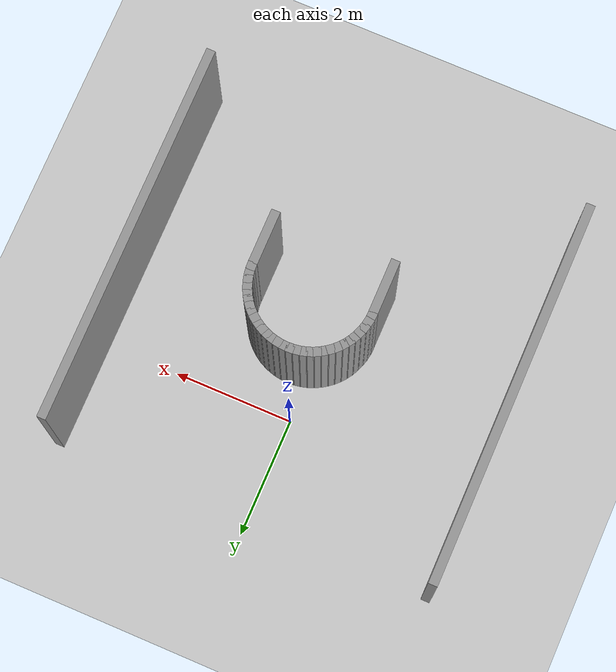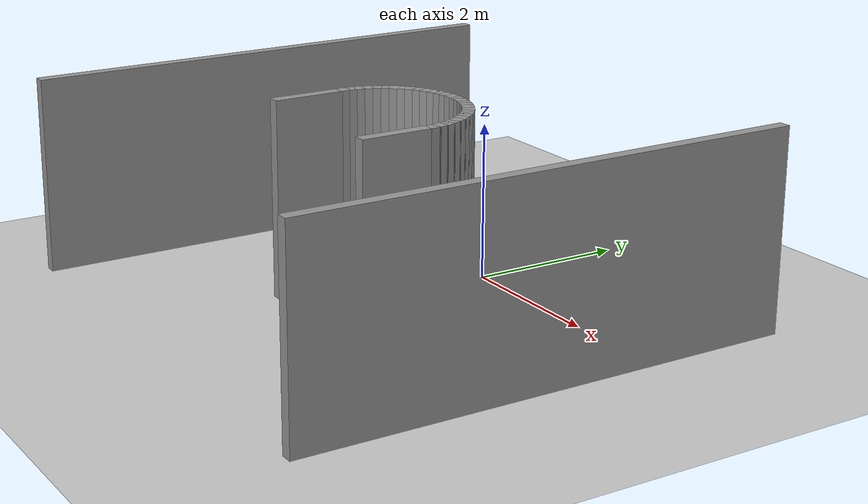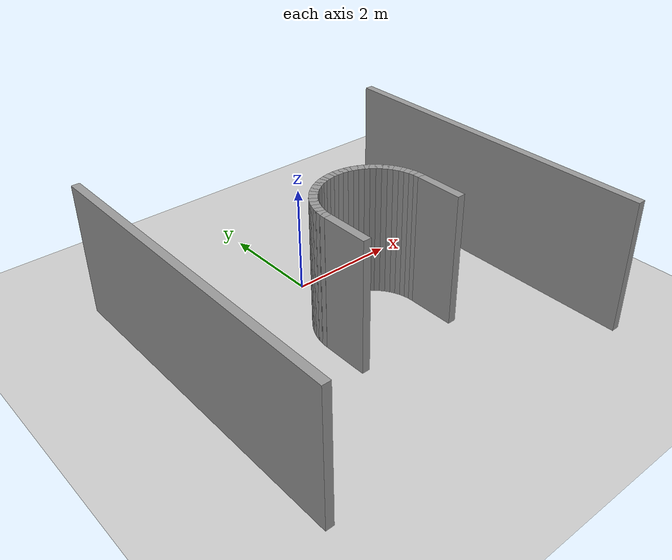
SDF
<sdf version="1.7">
 <world name="default">
  <model name="ground_plane">
   <static>1</static>
   <link name="link">
    <collision name="collision">
     <geometry><plane><normal>0 0 1</normal><size>100 100</size></plane></geometry>
     <surface>
      <contact><collide_bitmask>65535</collide_bitmask></contact>
      <friction><ode><mu>100</mu><mu2>50</mu2></ode></friction>
     </surface>
    </collision>
    <visual name="visual">
     <cast_shadows>0</cast_shadows>
     <geometry><plane><normal>0 0 1</normal><size>100 100</size></plane></geometry>
     <material>
      <script><uri>file://media/materials/scripts/gazebo.material</uri><name>Gazebo/Grey</name></script>
     </material>
    </visual>
   </link>
  </model>
  <model name="map_hourglass_u_side_walls">
   <link name="Side_wall_left">
    <collision name="Side_wall_left_Collision">
     <geometry><box><size>6.365 0.15 2.5</size></box></geometry>
     <pose>0 0 1.25 0 -0 0</pose>
    </collision>
    <visual name="Side_wall_left_Visual">
     <pose>0 0 1.25 0 -0 0</pose>
     <geometry><box><size>6.365 0.15 2.5</size></box></geometry>
     <material>
      <script><uri>file://media/materials/scripts/gazebo.material</uri><name>Gazebo/Grey</name></script>
      <ambient>1 1 1 1</ambient>
     </material>
    </visual>
    <pose>-3.120000 -1.362500 0 0 -0 1.570796</pose>
   </link>
   <link name="Side_wall_right">
    <collision name="Side_wall_right_Collision">
     <geometry><box><size>6.365 0.15 2.5</size></box></geometry>
     <pose>0 0 1.25 0 -0 0</pose>
    </collision>
    <visual name="Side_wall_right_Visual">
     <pose>0 0 1.25 0 -0 0</pose>
     <geometry><box><size>6.365 0.15 2.5</size></box></geometry>
     <material>
      <script><uri>file://media/materials/scripts/gazebo.material</uri><name>Gazebo/Grey</name></script>
      <ambient>1 1 1 1</ambient>
     </material>
    </visual>
    <pose>3.270000 -1.362500 0 0 -0 1.570796</pose>
   </link>
   <static>1</static>
  </model>
  <model name="map_hourglass_u_goal_u">
   <link name="Goal_U_top_00">
    <collision name="Goal_U_top_00_Collision">
     <geometry><box><size>0.13084 0.15 2.5</size></box></geometry>
     <pose>0 0 1.25 0 -0 0</pose>
    </collision>
    <visual name="Goal_U_top_00_Visual">
     <pose>0 0 1.25 0 -0 0</pose>
     <geometry><box><size>0.13084 0.15 2.5</size></box></geometry>
     <material>
      <script><uri>file://media/materials/scripts/gazebo.material</uri><name>Gazebo/Grey</name></script>
      <ambient>1 1 1 1</ambient>
     </material>
    </visual>
    <pose>1.298630 -1.597664 0 0 -0 1.623156</pose>
   </link>
   <link name="Goal_U_top_01">
    <collision name="Goal_U_top_01_Collision">
     <geometry><box><size>0.13084 0.15 2.5</size></box></geometry>
     <pose>0 0 1.25 0 -0 0</pose>
    </collision>
    <visual name="Goal_U_top_01_Visual">
     <pose>0 0 1.25 0 -0 0</pose>
     <geometry><box><size>0.13084 0.15 2.5</size></box></geometry>
     <material>
      <script><uri>file://media/materials/scripts/gazebo.material</uri><name>Gazebo/Grey</name></script>
      <ambient>1 1 1 1</ambient>
     </material>
    </visual>
    <pose>1.287688 -1.493566 0 0 -0 1.727876</pose>
   </link>
   <link name="Goal_U_top_02">
    <collision name="Goal_U_top_02_Collision">
     <geometry><box><size>0.13084 0.15 2.5</size></box></geometry>
     <pose>0 0 1.25 0 -0 0</pose>
    </collision>
    <visual name="Goal_U_top_02_Visual">
     <pose>0 0 1.25 0 -0 0</pose>
     <geometry><box><size>0.13084 0.15 2.5</size></box></geometry>
     <material>
      <script><uri>file://media/materials/scripts/gazebo.material</uri><name>Gazebo/Grey</name></script>
      <ambient>1 1 1 1</ambient>
     </material>
    </visual>
    <pose>1.265926 -1.391181 0 0 -0 1.832596</pose>
   </link>
   <link name="Goal_U_top_03">
    <collision name="Goal_U_top_03_Collision">
     <geometry><box><size>0.13084 0.15 2.5</size></box></geometry>
     <pose>0 0 1.25 0 -0 0</pose>
    </collision>
    <visual name="Goal_U_top_03_Visual">
     <pose>0 0 1.25 0 -0 0</pose>
     <geometry><box><size>0.13084 0.15 2.5</size></box></geometry>
     <material>
      <script><uri>file://media/materials/scripts/gazebo.material</uri><name>Gazebo/Grey</name></script>
      <ambient>1 1 1 1</ambient>
     </material>
    </visual>
    <pose>1.233580 -1.291632 0 0 -0 1.937315</pose>
   </link>
   <link name="Goal_U_top_04">
    <collision name="Goal_U_top_04_Collision">
     <geometry><box><size>0.13084 0.15 2.5</size></box></geometry>
     <pose>0 0 1.25 0 -0 0</pose>
    </collision>
    <visual name="Goal_U_top_04_Visual">
     <pose>0 0 1.25 0 -0 0</pose>
     <geometry><box><size>0.13084 0.15 2.5</size></box></geometry>
     <material>
      <script><uri>file://media/materials/scripts/gazebo.material</uri><name>Gazebo/Grey</name></script>
      <ambient>1 1 1 1</ambient>
     </material>
    </visual>
    <pose>1.191007 -1.196010 0 0 -0 2.042035</pose>
   </link>
   <link name="Goal_U_top_05">
    <collision name="Goal_U_top_05_Collision">
     <geometry><box><size>0.13084 0.15 2.5</size></box></geometry>
     <pose>0 0 1.25 0 -0 0</pose>
    </collision>
    <visual name="Goal_U_top_05_Visual">
     <pose>0 0 1.25 0 -0 0</pose>
     <geometry><box><size>0.13084 0.15 2.5</size></box></geometry>
     <material>
      <script><uri>file://media/materials/scripts/gazebo.material</uri><name>Gazebo/Grey</name></script>
      <ambient>1 1 1 1</ambient>
     </material>
    </visual>
    <pose>1.138671 -1.105361 0 0 -0 2.146755</pose>
   </link>
   <link name="Goal_U_top_06">
    <collision name="Goal_U_top_06_Collision">
     <geometry><box><size>0.13084 0.15 2.5</size></box></geometry>
     <pose>0 0 1.25 0 -0 0</pose>
    </collision>
    <visual name="Goal_U_top_06_Visual">
     <pose>0 0 1.25 0 -0 0</pose>
     <geometry><box><size>0.13084 0.15 2.5</size></box></geometry>
     <material>
      <script><uri>file://media/materials/scripts/gazebo.material</uri><name>Gazebo/Grey</name></script>
      <ambient>1 1 1 1</ambient>
     </material>
    </visual>
    <pose>1.077146 -1.020680 0 0 -0 2.251475</pose>
   </link>
   <link name="Goal_U_top_07">
    <collision name="Goal_U_top_07_Collision">
     <geometry><box><size>0.13084 0.15 2.5</size></box></geometry>
     <pose>0 0 1.25 0 -0 0</pose>
    </collision>
    <visual name="Goal_U_top_07_Visual">
     <pose>0 0 1.25 0 -0 0</pose>
     <geometry><box><size>0.13084 0.15 2.5</size></box></geometry>
     <material>
      <script><uri>file://media/materials/scripts/gazebo.material</uri><name>Gazebo/Grey</name></script>
      <ambient>1 1 1 1</ambient>
     </material>
    </visual>
    <pose>1.007107 -0.942893 0 0 -0 2.356194</pose>
   </link>
   <link name="Goal_U_top_08">
    <collision name="Goal_U_top_08_Collision">
     <geometry><box><size>0.13084 0.15 2.5</size></box></geometry>
     <pose>0 0 1.25 0 -0 0</pose>
    </collision>
    <visual name="Goal_U_top_08_Visual">
     <pose>0 0 1.25 0 -0 0</pose>
     <geometry><box><size>0.13084 0.15 2.5</size></box></geometry>
     <material>
      <script><uri>file://media/materials/scripts/gazebo.material</uri><name>Gazebo/Grey</name></script>
      <ambient>1 1 1 1</ambient>
     </material>
    </visual>
    <pose>0.929320 -0.872854 0 0 -0 2.460914</pose>
   </link>
   <link name="Goal_U_top_09">
    <collision name="Goal_U_top_09_Collision">
     <geometry><box><size>0.13084 0.15 2.5</size></box></geometry>
     <pose>0 0 1.25 0 -0 0</pose>
    </collision>
    <visual name="Goal_U_top_09_Visual">
     <pose>0 0 1.25 0 -0 0</pose>
     <geometry><box><size>0.13084 0.15 2.5</size></box></geometry>
     <material>
      <script><uri>file://media/materials/scripts/gazebo.material</uri><name>Gazebo/Grey</name></script>
      <ambient>1 1 1 1</ambient>
     </material>
    </visual>
    <pose>0.844639 -0.811329 0 0 -0 2.565634</pose>
   </link>
   <link name="Goal_U_top_10">
    <collision name="Goal_U_top_10_Collision">
     <geometry><box><size>0.13084 0.15 2.5</size></box></geometry>
     <pose>0 0 1.25 0 -0 0</pose>
    </collision>
    <visual name="Goal_U_top_10_Visual">
     <pose>0 0 1.25 0 -0 0</pose>
     <geometry><box><size>0.13084 0.15 2.5</size></box></geometry>
     <material>
      <script><uri>file://media/materials/scripts/gazebo.material</uri><name>Gazebo/Grey</name></script>
      <ambient>1 1 1 1</ambient>
     </material>
    </visual>
    <pose>0.753990 -0.758993 0 0 -0 2.670354</pose>
   </link>
   <link name="Goal_U_top_11">
    <collision name="Goal_U_top_11_Collision">
     <geometry><box><size>0.13084 0.15 2.5</size></box></geometry>
     <pose>0 0 1.25 0 -0 0</pose>
    </collision>
    <visual name="Goal_U_top_11_Visual">
     <pose>0 0 1.25 0 -0 0</pose>
     <geometry><box><size>0.13084 0.15 2.5</size></box></geometry>
     <material>
      <script><uri>file://media/materials/scripts/gazebo.material</uri><name>Gazebo/Grey</name></script>
      <ambient>1 1 1 1</ambient>
     </material>
    </visual>
    <pose>0.658368 -0.716420 0 0 -0 2.775074</pose>
   </link>
   <link name="Goal_U_top_12">
    <collision name="Goal_U_top_12_Collision">
     <geometry><box><size>0.13084 0.15 2.5</size></box></geometry>
     <pose>0 0 1.25 0 -0 0</pose>
    </collision>
    <visual name="Goal_U_top_12_Visual">
     <pose>0 0 1.25 0 -0 0</pose>
     <geometry><box><size>0.13084 0.15 2.5</size></box></geometry>
     <material>
      <script><uri>file://media/materials/scripts/gazebo.material</uri><name>Gazebo/Grey</name></script>
      <ambient>1 1 1 1</ambient>
     </material>
    </visual>
    <pose>0.558819 -0.684074 0 0 -0 2.879793</pose>
   </link>
   <link name="Goal_U_top_13">
    <collision name="Goal_U_top_13_Collision">
     <geometry><box><size>0.13084 0.15 2.5</size></box></geometry>
     <pose>0 0 1.25 0 -0 0</pose>
    </collision>
    <visual name="Goal_U_top_13_Visual">
     <pose>0 0 1.25 0 -0 0</pose>
     <geometry><box><size>0.13084 0.15 2.5</size></box></geometry>
     <material>
      <script><uri>file://media/materials/scripts/gazebo.material</uri><name>Gazebo/Grey</name></script>
      <ambient>1 1 1 1</ambient>
     </material>
    </visual>
    <pose>0.456434 -0.662312 0 0 -0 2.984513</pose>
   </link>
   <link name="Goal_U_top_14">
    <collision name="Goal_U_top_14_Collision">
     <geometry><box><size>0.13084 0.15 2.5</size></box></geometry>
     <pose>0 0 1.25 0 -0 0</pose>
    </collision>
    <visual name="Goal_U_top_14_Visual">
     <pose>0 0 1.25 0 -0 0</pose>
     <geometry><box><size>0.13084 0.15 2.5</size></box></geometry>
     <material>
      <script><uri>file://media/materials/scripts/gazebo.material</uri><name>Gazebo/Grey</name></script>
      <ambient>1 1 1 1</ambient>
     </material>
    </visual>
    <pose>0.352336 -0.651370 0 0 -0 3.089233</pose>
   </link>
   <link name="Goal_U_top_15">
    <collision name="Goal_U_top_15_Collision">
     <geometry><box><size>0.13084 0.15 2.5</size></box></geometry>
     <pose>0 0 1.25 0 -0 0</pose>
    </collision>
    <visual name="Goal_U_top_15_Visual">
     <pose>0 0 1.25 0 -0 0</pose>
     <geometry><box><size>0.13084 0.15 2.5</size></box></geometry>
     <material>
      <script><uri>file://media/materials/scripts/gazebo.material</uri><name>Gazebo/Grey</name></script>
      <ambient>1 1 1 1</ambient>
     </material>
    </visual>
    <pose>0.247664 -0.651370 0 0 -0 3.193953</pose>
   </link>
   <link name="Goal_U_top_16">
    <collision name="Goal_U_top_16_Collision">
     <geometry><box><size>0.13084 0.15 2.5</size></box></geometry>
     <pose>0 0 1.25 0 -0 0</pose>
    </collision>
    <visual name="Goal_U_top_16_Visual">
     <pose>0 0 1.25 0 -0 0</pose>
     <geometry><box><size>0.13084 0.15 2.5</size></box></geometry>
     <material>
      <script><uri>file://media/materials/scripts/gazebo.material</uri><name>Gazebo/Grey</name></script>
      <ambient>1 1 1 1</ambient>
     </material>
    </visual>
    <pose>0.143566 -0.662312 0 0 -0 3.298672</pose>
   </link>
   <link name="Goal_U_top_17">
    <collision name="Goal_U_top_17_Collision">
     <geometry><box><size>0.13084 0.15 2.5</size></box></geometry>
     <pose>0 0 1.25 0 -0 0</pose>
    </collision>
    <visual name="Goal_U_top_17_Visual">
     <pose>0 0 1.25 0 -0 0</pose>
     <geometry><box><size>0.13084 0.15 2.5</size></box></geometry>
     <material>
      <script><uri>file://media/materials/scripts/gazebo.material</uri><name>Gazebo/Grey</name></script>
      <ambient>1 1 1 1</ambient>
     </material>
    </visual>
    <pose>0.041181 -0.684074 0 0 -0 3.403392</pose>
   </link>
   <link name="Goal_U_top_18">
    <collision name="Goal_U_top_18_Collision">
     <geometry><box><size>0.13084 0.15 2.5</size></box></geometry>
     <pose>0 0 1.25 0 -0 0</pose>
    </collision>
    <visual name="Goal_U_top_18_Visual">
     <pose>0 0 1.25 0 -0 0</pose>
     <geometry><box><size>0.13084 0.15 2.5</size></box></geometry>
     <material>
      <script><uri>file://media/materials/scripts/gazebo.material</uri><name>Gazebo/Grey</name></script>
      <ambient>1 1 1 1</ambient>
     </material>
    </visual>
    <pose>-0.058368 -0.716420 0 0 -0 3.508112</pose>
   </link>
   <link name="Goal_U_top_19">
    <collision name="Goal_U_top_19_Collision">
     <geometry><box><size>0.13084 0.15 2.5</size></box></geometry>
     <pose>0 0 1.25 0 -0 0</pose>
    </collision>
    <visual name="Goal_U_top_19_Visual">
     <pose>0 0 1.25 0 -0 0</pose>
     <geometry><box><size>0.13084 0.15 2.5</size></box></geometry>
     <material>
      <script><uri>file://media/materials/scripts/gazebo.material</uri><name>Gazebo/Grey</name></script>
      <ambient>1 1 1 1</ambient>
     </material>
    </visual>
    <pose>-0.153990 -0.758993 0 0 -0 3.612832</pose>
   </link>
   <link name="Goal_U_top_20">
    <collision name="Goal_U_top_20_Collision">
     <geometry><box><size>0.13084 0.15 2.5</size></box></geometry>
     <pose>0 0 1.25 0 -0 0</pose>
    </collision>
    <visual name="Goal_U_top_20_Visual">
     <pose>0 0 1.25 0 -0 0</pose>
     <geometry><box><size>0.13084 0.15 2.5</size></box></geometry>
     <material>
      <script><uri>file://media/materials/scripts/gazebo.material</uri><name>Gazebo/Grey</name></script>
      <ambient>1 1 1 1</ambient>
     </material>
    </visual>
    <pose>-0.244639 -0.811329 0 0 -0 3.717551</pose>
   </link>
   <link name="Goal_U_top_21">
    <collision name="Goal_U_top_21_Collision">
     <geometry><box><size>0.13084 0.15 2.5</size></box></geometry>
     <pose>0 0 1.25 0 -0 0</pose>
    </collision>
    <visual name="Goal_U_top_21_Visual">
     <pose>0 0 1.25 0 -0 0</pose>
     <geometry><box><size>0.13084 0.15 2.5</size></box></geometry>
     <material>
      <script><uri>file://media/materials/scripts/gazebo.material</uri><name>Gazebo/Grey</name></script>
      <ambient>1 1 1 1</ambient>
     </material>
    </visual>
    <pose>-0.329320 -0.872854 0 0 -0 3.822271</pose>
   </link>
   <link name="Goal_U_top_22">
    <collision name="Goal_U_top_22_Collision">
     <geometry><box><size>0.13084 0.15 2.5</size></box></geometry>
     <pose>0 0 1.25 0 -0 0</pose>
    </collision>
    <visual name="Goal_U_top_22_Visual">
     <pose>0 0 1.25 0 -0 0</pose>
     <geometry><box><size>0.13084 0.15 2.5</size></box></geometry>
     <material>
      <script><uri>file://media/materials/scripts/gazebo.material</uri><name>Gazebo/Grey</name></script>
      <ambient>1 1 1 1</ambient>
     </material>
    </visual>
    <pose>-0.407107 -0.942893 0 0 -0 3.926991</pose>
   </link>
   <link name="Goal_U_top_23">
    <collision name="Goal_U_top_23_Collision">
     <geometry><box><size>0.13084 0.15 2.5</size></box></geometry>
     <pose>0 0 1.25 0 -0 0</pose>
    </collision>
    <visual name="Goal_U_top_23_Visual">
     <pose>0 0 1.25 0 -0 0</pose>
     <geometry><box><size>0.13084 0.15 2.5</size></box></geometry>
     <material>
      <script><uri>file://media/materials/scripts/gazebo.material</uri><name>Gazebo/Grey</name></script>
      <ambient>1 1 1 1</ambient>
     </material>
    </visual>
    <pose>-0.477146 -1.020680 0 0 -0 4.031711</pose>
   </link>
   <link name="Goal_U_top_24">
    <collision name="Goal_U_top_24_Collision">
     <geometry><box><size>0.13084 0.15 2.5</size></box></geometry>
     <pose>0 0 1.25 0 -0 0</pose>
    </collision>
    <visual name="Goal_U_top_24_Visual">
     <pose>0 0 1.25 0 -0 0</pose>
     <geometry><box><size>0.13084 0.15 2.5</size></box></geometry>
     <material>
      <script><uri>file://media/materials/scripts/gazebo.material</uri><name>Gazebo/Grey</name></script>
      <ambient>1 1 1 1</ambient>
     </material>
    </visual>
    <pose>-0.538671 -1.105361 0 0 -0 4.136430</pose>
   </link>
   <link name="Goal_U_top_25">
    <collision name="Goal_U_top_25_Collision">
     <geometry><box><size>0.13084 0.15 2.5</size></box></geometry>
     <pose>0 0 1.25 0 -0 0</pose>
    </collision>
    <visual name="Goal_U_top_25_Visual">
     <pose>0 0 1.25 0 -0 0</pose>
     <geometry><box><size>0.13084 0.15 2.5</size></box></geometry>
     <material>
      <script><uri>file://media/materials/scripts/gazebo.material</uri><name>Gazebo/Grey</name></script>
      <ambient>1 1 1 1</ambient>
     </material>
    </visual>
    <pose>-0.591007 -1.196010 0 0 -0 4.241150</pose>
   </link>
   <link name="Goal_U_top_26">
    <collision name="Goal_U_top_26_Collision">
     <geometry><box><size>0.13084 0.15 2.5</size></box></geometry>
     <pose>0 0 1.25 0 -0 0</pose>
    </collision>
    <visual name="Goal_U_top_26_Visual">
     <pose>0 0 1.25 0 -0 0</pose>
     <geometry><box><size>0.13084 0.15 2.5</size></box></geometry>
     <material>
      <script><uri>file://media/materials/scripts/gazebo.material</uri><name>Gazebo/Grey</name></script>
      <ambient>1 1 1 1</ambient>
     </material>
    </visual>
    <pose>-0.633580 -1.291632 0 0 -0 4.345870</pose>
   </link>
   <link name="Goal_U_top_27">
    <collision name="Goal_U_top_27_Collision">
     <geometry><box><size>0.13084 0.15 2.5</size></box></geometry>
     <pose>0 0 1.25 0 -0 0</pose>
    </collision>
    <visual name="Goal_U_top_27_Visual">
     <pose>0 0 1.25 0 -0 0</pose>
     <geometry><box><size>0.13084 0.15 2.5</size></box></geometry>
     <material>
      <script><uri>file://media/materials/scripts/gazebo.material</uri><name>Gazebo/Grey</name></script>
      <ambient>1 1 1 1</ambient>
     </material>
    </visual>
    <pose>-0.665926 -1.391181 0 0 -0 4.450590</pose>
   </link>
   <link name="Goal_U_top_28">
    <collision name="Goal_U_top_28_Collision">
     <geometry><box><size>0.13084 0.15 2.5</size></box></geometry>
     <pose>0 0 1.25 0 -0 0</pose>
    </collision>
    <visual name="Goal_U_top_28_Visual">
     <pose>0 0 1.25 0 -0 0</pose>
     <geometry><box><size>0.13084 0.15 2.5</size></box></geometry>
     <material>
      <script><uri>file://media/materials/scripts/gazebo.material</uri><name>Gazebo/Grey</name></script>
      <ambient>1 1 1 1</ambient>
     </material>
    </visual>
    <pose>-0.687688 -1.493566 0 0 -0 4.555309</pose>
   </link>
   <link name="Goal_U_top_29">
    <collision name="Goal_U_top_29_Collision">
     <geometry><box><size>0.13084 0.15 2.5</size></box></geometry>
     <pose>0 0 1.25 0 -0 0</pose>
    </collision>
    <visual name="Goal_U_top_29_Visual">
     <pose>0 0 1.25 0 -0 0</pose>
     <geometry><box><size>0.13084 0.15 2.5</size></box></geometry>
     <material>
      <script><uri>file://media/materials/scripts/gazebo.material</uri><name>Gazebo/Grey</name></script>
      <ambient>1 1 1 1</ambient>
     </material>
    </visual>
    <pose>-0.698630 -1.597664 0 0 -0 4.660029</pose>
   </link>
   <link name="Goal_U_left">
    <collision name="Goal_U_left_Collision">
     <geometry><box><size>0.9 0.15 2.5</size></box></geometry>
     <pose>0 0 1.25 0 -0 0</pose>
    </collision>
    <visual name="Goal_U_left_Visual">
     <pose>0 0 1.25 0 -0 0</pose>
     <geometry><box><size>0.9 0.15 2.5</size></box></geometry>
     <material>
      <script><uri>file://media/materials/scripts/gazebo.material</uri><name>Gazebo/Grey</name></script>
      <ambient>1 1 1 1</ambient>
     </material>
    </visual>
    <pose>-0.700000 -2.100000 0 0 -0 1.570796</pose>
   </link>
   <link name="Goal_U_right">
    <collision name="Goal_U_right_Collision">
     <geometry><box><size>0.9 0.15 2.5</size></box></geometry>
     <pose>0 0 1.25 0 -0 0</pose>
    </collision>
    <visual name="Goal_U_right_Visual">
     <pose>0 0 1.25 0 -0 0</pose>
     <geometry><box><size>0.9 0.15 2.5</size></box></geometry>
     <material>
      <script><uri>file://media/materials/scripts/gazebo.material</uri><name>Gazebo/Grey</name></script>
      <ambient>1 1 1 1</ambient>
     </material>
    </visual>
    <pose>1.300000 -2.100000 0 0 -0 1.570796</pose>
   </link>
   <static>1</static>
  </model>
 </world>
</sdf>
